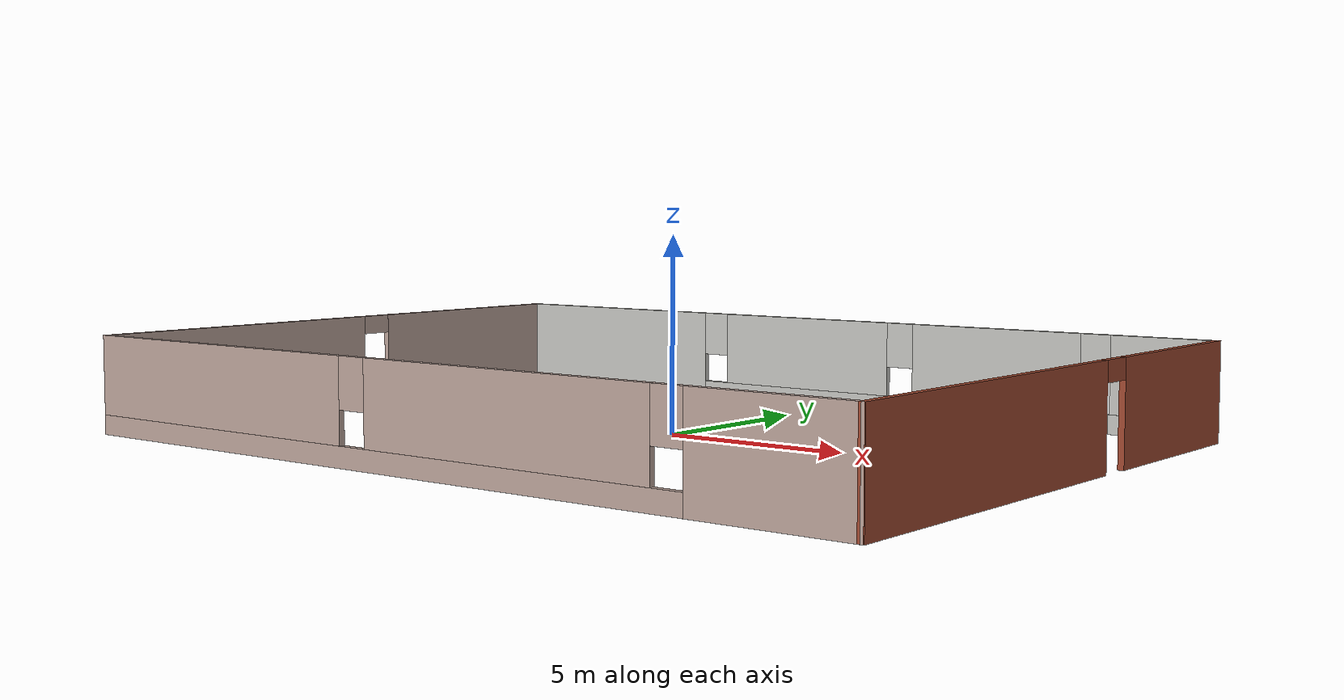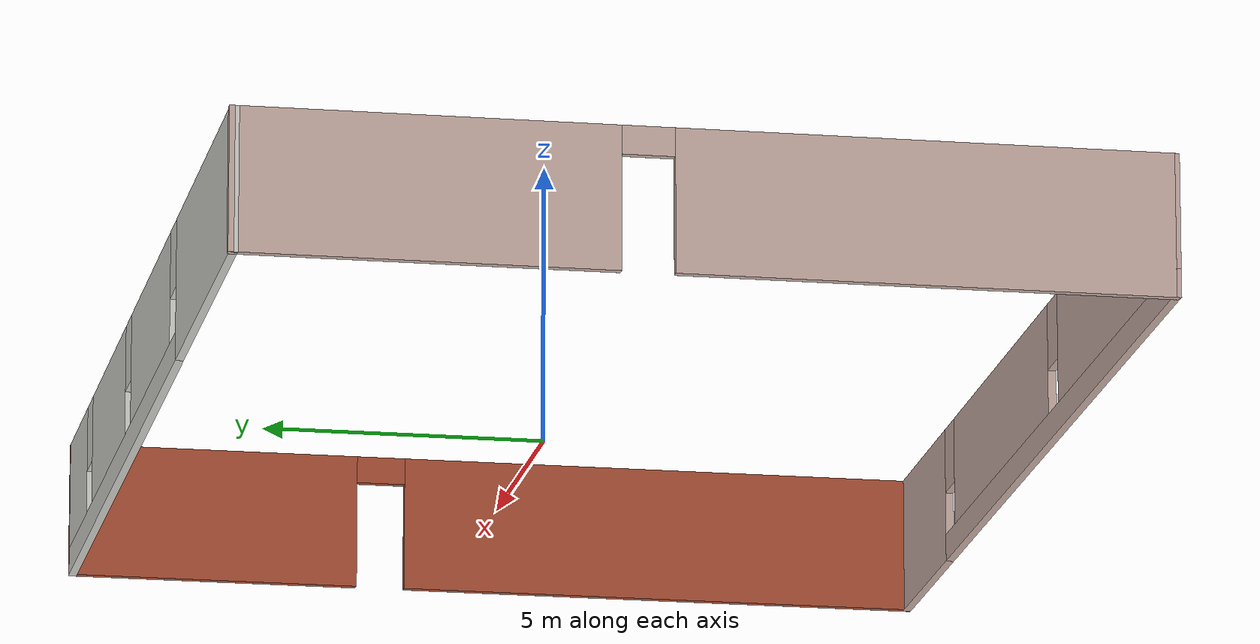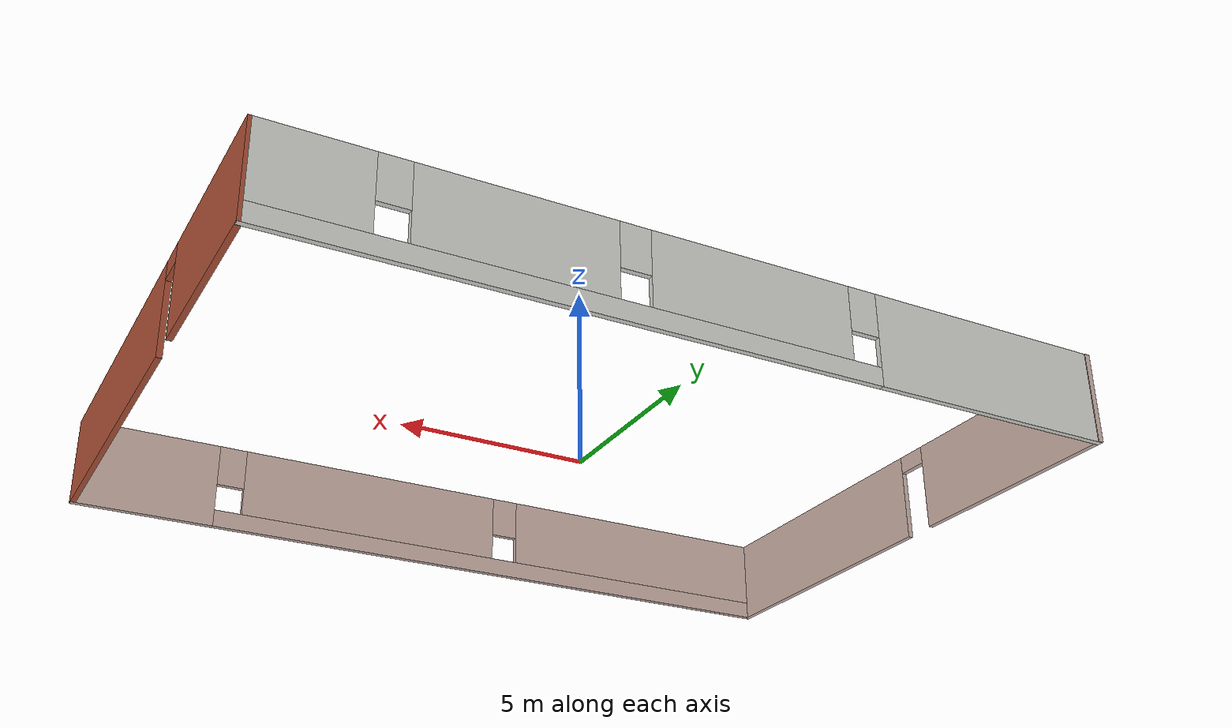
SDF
<?xml version='1.0'?>
<sdf version='1.7'>
  <model name='my_building'>
    <pose>0.045723 -0.900146 0 0 -0 0</pose>
    <link name='Wall_0'>
      <pose>-11.1115 0.070166 0 0 -0 1.5708</pose>
      <visual name='Wall_0_Visual_0'>
        <pose>-3.7263 0 1.25 0 -0 0</pose>
        <geometry>
          <box>
            <size>8.54739 0.15 2.5</size>
          </box>
        </geometry>
        <material>
          <script>
            <uri>file://media/materials/scripts/gazebo.material</uri>
            <name>Gazebo/Grey</name>
          </script>
          <ambient>0.760784 0.662745 0.627451 1</ambient>
        </material>
        <meta>
          <layer>0</layer>
        </meta>
      </visual>
      <collision name='Wall_0_Collision_0'>
        <geometry>
          <box>
            <size>8.54739 0.15 2.5</size>
          </box>
        </geometry>
        <pose>-3.7263 0 1.25 0 -0 0</pose>
      </collision>
      <visual name='Wall_0_Visual_1'>
        <pose>4.7237 0 1.25 0 -0 0</pose>
        <geometry>
          <box>
            <size>6.55261 0.15 2.5</size>
          </box>
        </geometry>
        <material>
          <script>
            <uri>file://media/materials/scripts/gazebo.material</uri>
            <name>Gazebo/Grey</name>
          </script>
          <ambient>0.760784 0.662745 0.627451 1</ambient>
        </material>
        <meta>
          <layer>0</layer>
        </meta>
      </visual>
      <collision name='Wall_0_Collision_1'>
        <geometry>
          <box>
            <size>6.55261 0.15 2.5</size>
          </box>
        </geometry>
        <pose>4.7237 0 1.25 0 -0 0</pose>
      </collision>
      <visual name='Wall_0_Visual_2'>
        <pose>0.997393 0 2.25 0 -0 0</pose>
        <geometry>
          <box>
            <size>0.9 0.15 0.5</size>
          </box>
        </geometry>
        <material>
          <script>
            <uri>file://media/materials/scripts/gazebo.material</uri>
            <name>Gazebo/Grey</name>
          </script>
          <ambient>0.760784 0.662745 0.627451 1</ambient>
        </material>
        <meta>
          <layer>0</layer>
        </meta>
      </visual>
      <collision name='Wall_0_Collision_2'>
        <geometry>
          <box>
            <size>0.9 0.15 0.5</size>
          </box>
        </geometry>
        <pose>0.997393 0 2.25 0 -0 0</pose>
      </collision>
    </link>
    <link name='Wall_1'>
      <pose>-0.008537 7.91646 0 0 -0 -0.005513</pose>
      <visual name='Wall_1_Visual_0'>
        <pose>-7.73425 0 1.25 0 -0 0</pose>
        <geometry>
          <box>
            <size>6.88777 0.15 2.5</size>
          </box>
        </geometry>
        <material>
          <script>
            <uri>file://media/materials/scripts/gazebo.material</uri>
            <name>Gazebo/CeilingTiled</name>
          </script>
          <ambient>0.760784 0.662745 0.627451 1</ambient>
        </material>
        <meta>
          <layer>0</layer>
        </meta>
      </visual>
      <collision name='Wall_1_Collision_0'>
        <geometry>
          <box>
            <size>6.88777 0.15 2.5</size>
          </box>
        </geometry>
        <pose>-7.73425 0 1.25 0 -0 0</pose>
      </collision>
      <visual name='Wall_1_Visual_1'>
        <pose>3.44388 0 0.25 0 -0 0</pose>
        <geometry>
          <box>
            <size>15.4685 0.15 0.5</size>
          </box>
        </geometry>
        <material>
          <script>
            <uri>file://media/materials/scripts/gazebo.material</uri>
            <name>Gazebo/CeilingTiled</name>
          </script>
          <ambient>0.760784 0.662745 0.627451 1</ambient>
        </material>
        <meta>
          <layer>0</layer>
        </meta>
      </visual>
      <collision name='Wall_1_Collision_1'>
        <geometry>
          <box>
            <size>15.4685 0.15 0.5</size>
          </box>
        </geometry>
        <pose>3.44388 0 0.25 0 -0 0</pose>
      </collision>
      <visual name='Wall_1_Visual_2'>
        <pose>-0.779998 0 1.5 0 -0 0</pose>
        <geometry>
          <box>
            <size>5.42074 0.15 2</size>
          </box>
        </geometry>
        <material>
          <script>
            <uri>file://media/materials/scripts/gazebo.material</uri>
            <name>Gazebo/CeilingTiled</name>
          </script>
          <ambient>0.760784 0.662745 0.627451 1</ambient>
        </material>
        <meta>
          <layer>0</layer>
        </meta>
      </visual>
      <collision name='Wall_1_Collision_2'>
        <geometry>
          <box>
            <size>5.42074 0.15 2</size>
          </box>
        </geometry>
        <pose>-0.779998 0 1.5 0 -0 0</pose>
      </collision>
      <visual name='Wall_1_Visual_3'>
        <pose>5.18019 0 1.5 0 -0 0</pose>
        <geometry>
          <box>
            <size>4.89963 0.15 2</size>
          </box>
        </geometry>
        <material>
          <script>
            <uri>file://media/materials/scripts/gazebo.material</uri>
            <name>Gazebo/CeilingTiled</name>
          </script>
          <ambient>0.760784 0.662745 0.627451 1</ambient>
        </material>
        <meta>
          <layer>0</layer>
        </meta>
      </visual>
      <collision name='Wall_1_Collision_3'>
        <geometry>
          <box>
            <size>4.89963 0.15 2</size>
          </box>
        </geometry>
        <pose>5.18019 0 1.5 0 -0 0</pose>
      </collision>
      <visual name='Wall_1_Visual_4'>
        <pose>9.80407 0 1.5 0 -0 0</pose>
        <geometry>
          <box>
            <size>2.74813 0.15 2</size>
          </box>
        </geometry>
        <material>
          <script>
            <uri>file://media/materials/scripts/gazebo.material</uri>
            <name>Gazebo/CeilingTiled</name>
          </script>
          <ambient>0.760784 0.662745 0.627451 1</ambient>
        </material>
        <meta>
          <layer>0</layer>
        </meta>
      </visual>
      <collision name='Wall_1_Collision_4'>
        <geometry>
          <box>
            <size>2.74813 0.15 2</size>
          </box>
        </geometry>
        <pose>9.80407 0 1.5 0 -0 0</pose>
      </collision>
      <visual name='Wall_1_Visual_5'>
        <pose>-3.89037 0 1.9 0 -0 0</pose>
        <geometry>
          <box>
            <size>0.8 0.15 1.2</size>
          </box>
        </geometry>
        <material>
          <script>
            <uri>file://media/materials/scripts/gazebo.material</uri>
            <name>Gazebo/CeilingTiled</name>
          </script>
          <ambient>0.760784 0.662745 0.627451 1</ambient>
        </material>
        <meta>
          <layer>0</layer>
        </meta>
      </visual>
      <collision name='Wall_1_Collision_5'>
        <geometry>
          <box>
            <size>0.8 0.15 1.2</size>
          </box>
        </geometry>
        <pose>-3.89037 0 1.9 0 -0 0</pose>
      </collision>
      <visual name='Wall_1_Visual_6'>
        <pose>2.33037 0 1.9 0 -0 0</pose>
        <geometry>
          <box>
            <size>0.8 0.15 1.2</size>
          </box>
        </geometry>
        <material>
          <script>
            <uri>file://media/materials/scripts/gazebo.material</uri>
            <name>Gazebo/CeilingTiled</name>
          </script>
          <ambient>0.760784 0.662745 0.627451 1</ambient>
        </material>
        <meta>
          <layer>0</layer>
        </meta>
      </visual>
      <collision name='Wall_1_Collision_6'>
        <geometry>
          <box>
            <size>0.8 0.15 1.2</size>
          </box>
        </geometry>
        <pose>2.33037 0 1.9 0 -0 0</pose>
      </collision>
      <visual name='Wall_1_Visual_7'>
        <pose>8.03 0 1.9 0 -0 0</pose>
        <geometry>
          <box>
            <size>0.8 0.15 1.2</size>
          </box>
        </geometry>
        <material>
          <script>
            <uri>file://media/materials/scripts/gazebo.material</uri>
            <name>Gazebo/CeilingTiled</name>
          </script>
          <ambient>0.760784 0.662745 0.627451 1</ambient>
        </material>
        <meta>
          <layer>0</layer>
        </meta>
      </visual>
      <collision name='Wall_1_Collision_7'>
        <geometry>
          <box>
            <size>0.8 0.15 1.2</size>
          </box>
        </geometry>
        <pose>8.03 0 1.9 0 -0 0</pose>
      </collision>
    </link>
    <link name='Wall_2'>
      <pose>11.1119 -0.069755 0 0 -0 -1.5708</pose>
      <visual name='Wall_2_Visual_0'>
        <pose>-5.30087 0 1.25 0 -0 0</pose>
        <geometry>
          <box>
            <size>5.39826 0.15 2.5</size>
          </box>
        </geometry>
        <material>
          <script>
            <uri>file://media/materials/scripts/gazebo.material</uri>
            <name>Gazebo/Bricks</name>
          </script>
          <ambient>0.760784 0.662745 0.627451 1</ambient>
        </material>
        <meta>
          <layer>0</layer>
        </meta>
      </visual>
      <collision name='Wall_2_Collision_0'>
        <geometry>
          <box>
            <size>5.39826 0.15 2.5</size>
          </box>
        </geometry>
        <pose>-5.30087 0 1.25 0 -0 0</pose>
      </collision>
      <visual name='Wall_2_Visual_1'>
        <pose>3.14913 0 1.25 0 -0 0</pose>
        <geometry>
          <box>
            <size>9.70174 0.15 2.5</size>
          </box>
        </geometry>
        <material>
          <script>
            <uri>file://media/materials/scripts/gazebo.material</uri>
            <name>Gazebo/Bricks</name>
          </script>
          <ambient>0.760784 0.662745 0.627451 1</ambient>
        </material>
        <meta>
          <layer>0</layer>
        </meta>
      </visual>
      <collision name='Wall_2_Collision_1'>
        <geometry>
          <box>
            <size>9.70174 0.15 2.5</size>
          </box>
        </geometry>
        <pose>3.14913 0 1.25 0 -0 0</pose>
      </collision>
      <visual name='Wall_2_Visual_2'>
        <pose>-2.15174 0 2.25 0 -0 0</pose>
        <geometry>
          <box>
            <size>0.9 0.15 0.5</size>
          </box>
        </geometry>
        <material>
          <script>
            <uri>file://media/materials/scripts/gazebo.material</uri>
            <name>Gazebo/Bricks</name>
          </script>
          <ambient>0.760784 0.662745 0.627451 1</ambient>
        </material>
        <meta>
          <layer>0</layer>
        </meta>
      </visual>
      <collision name='Wall_2_Collision_2'>
        <geometry>
          <box>
            <size>0.9 0.15 0.5</size>
          </box>
        </geometry>
        <pose>-2.15174 0 2.25 0 -0 0</pose>
      </collision>
    </link>
    <link name='Wall_3'>
      <pose>-0.008537 -7.93354 0 0 -0 3.13608</pose>
      <visual name='Wall_3_Visual_0'>
        <pose>-9.19339 0 1.25 0 -0 0</pose>
        <geometry>
          <box>
            <size>3.96948 0.15 2.5</size>
          </box>
        </geometry>
        <material>
          <script>
            <uri>file://media/materials/scripts/gazebo.material</uri>
            <name>Gazebo/Grey</name>
          </script>
          <ambient>0.760784 0.662745 0.627451 1</ambient>
        </material>
        <meta>
          <layer>0</layer>
        </meta>
      </visual>
      <collision name='Wall_3_Collision_0'>
        <geometry>
          <box>
            <size>3.96948 0.15 2.5</size>
          </box>
        </geometry>
        <pose>-9.19339 0 1.25 0 -0 0</pose>
      </collision>
      <visual name='Wall_3_Visual_1'>
        <pose>1.98474 0 0.25 0 -0 0</pose>
        <geometry>
          <box>
            <size>18.3868 0.15 0.5</size>
          </box>
        </geometry>
        <material>
          <script>
            <uri>file://media/materials/scripts/gazebo.material</uri>
            <name>Gazebo/Grey</name>
          </script>
          <ambient>0.760784 0.662745 0.627451 1</ambient>
        </material>
        <meta>
          <layer>0</layer>
        </meta>
      </visual>
      <collision name='Wall_3_Collision_1'>
        <geometry>
          <box>
            <size>18.3868 0.15 0.5</size>
          </box>
        </geometry>
        <pose>1.98474 0 0.25 0 -0 0</pose>
      </collision>
      <visual name='Wall_3_Visual_2'>
        <pose>-2.4118 0 1.5 0 -0 0</pose>
        <geometry>
          <box>
            <size>7.99371 0.15 2</size>
          </box>
        </geometry>
        <material>
          <script>
            <uri>file://media/materials/scripts/gazebo.material</uri>
            <name>Gazebo/Grey</name>
          </script>
          <ambient>0.760784 0.662745 0.627451 1</ambient>
        </material>
        <meta>
          <layer>0</layer>
        </meta>
      </visual>
      <collision name='Wall_3_Collision_2'>
        <geometry>
          <box>
            <size>7.99371 0.15 2</size>
          </box>
        </geometry>
        <pose>-2.4118 0 1.5 0 -0 0</pose>
      </collision>
      <visual name='Wall_3_Visual_3'>
        <pose>6.7816 0 1.5 0 -0 0</pose>
        <geometry>
          <box>
            <size>8.79307 0.15 2</size>
          </box>
        </geometry>
        <material>
          <script>
            <uri>file://media/materials/scripts/gazebo.material</uri>
            <name>Gazebo/Grey</name>
          </script>
          <ambient>0.760784 0.662745 0.627451 1</ambient>
        </material>
        <meta>
          <layer>0</layer>
        </meta>
      </visual>
      <collision name='Wall_3_Collision_3'>
        <geometry>
          <box>
            <size>8.79307 0.15 2</size>
          </box>
        </geometry>
        <pose>6.7816 0 1.5 0 -0 0</pose>
      </collision>
      <visual name='Wall_3_Visual_4'>
        <pose>-6.80865 0 1.9 0 -0 0</pose>
        <geometry>
          <box>
            <size>0.8 0.15 1.2</size>
          </box>
        </geometry>
        <material>
          <script>
            <uri>file://media/materials/scripts/gazebo.material</uri>
            <name>Gazebo/Grey</name>
          </script>
          <ambient>0.760784 0.662745 0.627451 1</ambient>
        </material>
        <meta>
          <layer>0</layer>
        </meta>
      </visual>
      <collision name='Wall_3_Collision_4'>
        <geometry>
          <box>
            <size>0.8 0.15 1.2</size>
          </box>
        </geometry>
        <pose>-6.80865 0 1.9 0 -0 0</pose>
      </collision>
      <visual name='Wall_3_Visual_5'>
        <pose>1.98506 0 1.9 0 -0 0</pose>
        <geometry>
          <box>
            <size>0.8 0.15 1.2</size>
          </box>
        </geometry>
        <material>
          <script>
            <uri>file://media/materials/scripts/gazebo.material</uri>
            <name>Gazebo/Grey</name>
          </script>
          <ambient>0.760784 0.662745 0.627451 1</ambient>
        </material>
        <meta>
          <layer>0</layer>
        </meta>
      </visual>
      <collision name='Wall_3_Collision_5'>
        <geometry>
          <box>
            <size>0.8 0.15 1.2</size>
          </box>
        </geometry>
        <pose>1.98506 0 1.9 0 -0 0</pose>
      </collision>
    </link>
    <static>1</static>
  </model>
</sdf>
